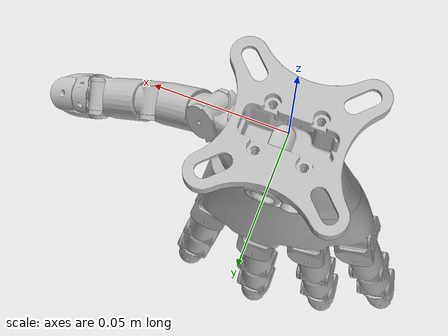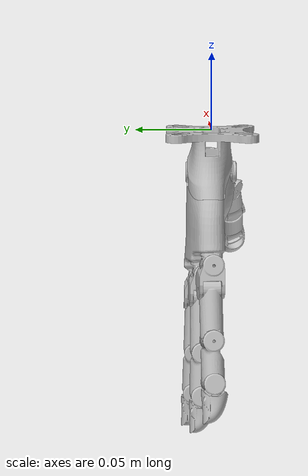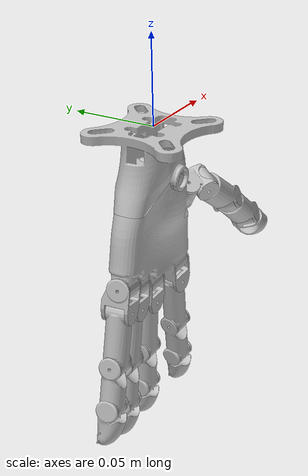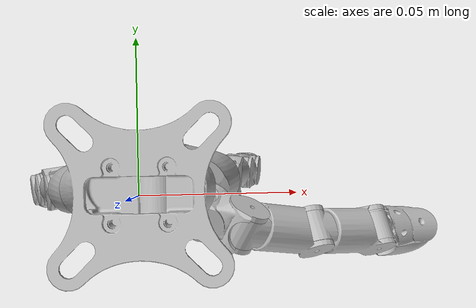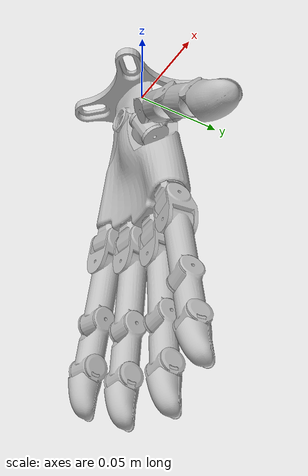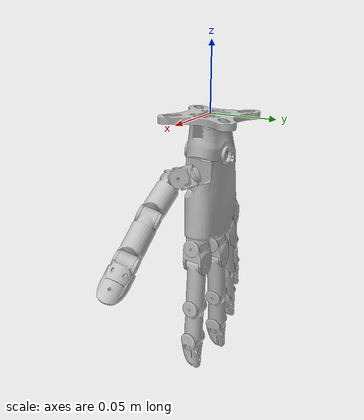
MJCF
<mujoco model="wujihand2-left">
  <compiler angle="radian" meshdir="../meshes/left/" />
  <option jacobian="sparse" integrator="RK4" timestep="0.002" solver="Newton" iterations="50" tolerance="1e-10" />
  <default>
    <joint armature="0.0002" damping="0.0" />
  </default>
  <asset>
    <mesh name="l_mount" content_type="model/stl" file="l_mount.STL" />
    <mesh name="l_wrist" content_type="model/stl" file="l_wrist.STL" />
    <mesh name="l_thumb_proximal" content_type="model/stl" file="l_thumb_proximal.STL" />
    <mesh name="l_thumb_proximal_abd" content_type="model/stl" file="l_thumb_proximal_abd.STL" />
    <mesh name="l_thumb_middle" content_type="model/stl" file="l_thumb_middle.STL" />
    <mesh name="l_thumb_distal" content_type="model/stl" file="l_thumb_distal.STL" />
    <mesh name="l_index_finger_proximal" content_type="model/stl" file="l_index_finger_proximal.STL" />
    <mesh name="l_index_finger_proximal_abd" content_type="model/stl" file="l_index_finger_proximal_abd.STL" />
    <mesh name="l_index_finger_middle" content_type="model/stl" file="l_index_finger_middle.STL" />
    <mesh name="l_index_finger_distal" content_type="model/stl" file="l_index_finger_distal.STL" />
    <mesh name="l_middle_finger_proximal" content_type="model/stl" file="l_middle_finger_proximal.STL" />
    <mesh name="l_middle_finger_proximal_abd" content_type="model/stl" file="l_middle_finger_proximal_abd.STL" />
    <mesh name="l_middle_finger_middle" content_type="model/stl" file="l_middle_finger_middle.STL" />
    <mesh name="l_middle_finger_distal" content_type="model/stl" file="l_middle_finger_distal.STL" />
    <mesh name="l_ring_finger_proximal" content_type="model/stl" file="l_ring_finger_proximal.STL" />
    <mesh name="l_ring_finger_proximal_abd" content_type="model/stl" file="l_ring_finger_proximal_abd.STL" />
    <mesh name="l_ring_finger_middle" content_type="model/stl" file="l_ring_finger_middle.STL" />
    <mesh name="l_ring_finger_distal" content_type="model/stl" file="l_ring_finger_distal.STL" />
    <mesh name="l_pinky_proximal" content_type="model/stl" file="l_pinky_proximal.STL" />
    <mesh name="l_pinky_proximal_abd" content_type="model/stl" file="l_pinky_proximal_abd.STL" />
    <mesh name="l_pinky_middle" content_type="model/stl" file="l_pinky_middle.STL" />
    <mesh name="l_pinky_distal" content_type="model/stl" file="l_pinky_distal.STL" />
  </asset>
  <worldbody>
    <body name="l_mount">
      <inertial pos="-0.00285741697915 0.00108288053432 -0.0169808713459" mass="0.069" quat="0.06126206 0.83362439 -0.18275230 -0.51760886" diaginertia="2.60390028e-05 2.50857182e-05 1.69216290e-05" />
      <geom type="mesh" contype="0" conaffinity="0" group="1" density="0" rgba="0.75 0.75 0.75 1" mesh="l_mount" />
      <geom type="mesh" rgba="0.8 0.6 1 0.3" mesh="l_mount" group="2" />
      <body name="l_wrist" pos="0.00300004769908 -0.00030010923368 -0.0284998261308">
        <inertial pos="-0.00354846481181 0.00346683963964 -0.0356860644391" mass="0.2323" quat="-0.69289634 -0.10762174 0.04153368 0.71174938" diaginertia="1.55584549e-04 9.95156428e-05 7.71172334e-05" />
        <geom type="mesh" contype="0" conaffinity="0" group="1" density="0" rgba="0.75 0.75 0.75 1" mesh="l_wrist" />
        <geom type="mesh" rgba="0.8 0.6 1 0.3" mesh="l_wrist" group="2" />
        <body name="l_thumb_proximal" pos="0.0172079523 -0.00813799077 -0.0164591739" quat="0.629481683 0.0606190694 -0.720070637 -0.285615856">
          <inertial pos="0.000791225 0.00178311 -0.00701986" quat="0.936928 0.0292296 -0.0818877 0.338536" mass="0.011" diaginertia="8.62864e-07 8.21693e-07 6.54356e-07" />
          <joint name="l_thumb_cmc_flex" pos="0 0 0" axis="-1 0 0" range="-1.187 1.291" actuatorfrcrange="-0.6 0.6" armature="0.0005" />
          <geom type="mesh" contype="0" conaffinity="0" group="1" density="0" rgba="0.75 0.75 0.75 1" mesh="l_thumb_proximal" />
          <geom type="mesh" rgba="0.8 0.6 1 0.3" mesh="l_thumb_proximal" group="2" />
          <body name="l_thumb_proximal_abd" pos="0.00025789 0.00063167 -0.014161" quat="0.934711 -0.0919289 0.342519 0.0233666">
            <inertial pos="1.22552e-05 -4.92145e-06 -0.0135605" quat="0.846494 -0.00222931 -0.00121984 0.532392" mass="0.0336" diaginertia="4.38854e-06 4.24746e-06 1.23727e-06" />
            <joint name="l_thumb_cmc_abd" pos="0 0 0" axis="0 1 0" range="-1.484 0.698" actuatorfrcrange="-0.6 0.6" armature="0.0005" />
            <geom type="mesh" contype="0" conaffinity="0" group="1" density="0" rgba="0.75 0.75 0.75 1" mesh="l_thumb_proximal_abd" />
            <geom type="mesh" rgba="0.8 0.6 1 0.3" mesh="l_thumb_proximal_abd" group="2" />
            <body name="l_thumb_middle" pos="-4.3136e-05 2.4905e-05 -0.033496" quat="0.965006 0.0112895 0.0421329 -0.258573">
              <inertial pos="7.07487e-07 4.31165e-08 -0.0143056" quat="0.70627 -3.2641e-05 -3.35882e-05 0.707942" mass="0.0358" diaginertia="4.92859e-06 4.8196e-06 1.32688e-06" />
              <joint name="l_thumb_mcp" pos="0 0 0" axis="-1 0 0" range="-1.047 1.57" actuatorfrcrange="-0.3 0.3" />
              <geom type="mesh" contype="0" conaffinity="0" group="1" density="0" rgba="0.75 0.75 0.75 1" mesh="l_thumb_middle" />
              <geom type="mesh" rgba="0.8 0.6 1 0.3" mesh="l_thumb_middle" group="2" />
              <body name="l_thumb_distal" pos="0 0 -0.035">
                <inertial pos="1.969e-05 -0.000512401 -0.0149323" quat="0.686307 0.0431774 -0.0347446 0.725198" mass="0.0159" diaginertia="1.38099e-06 1.3339e-06 6.79986e-07" />
                <joint name="l_thumb_ip" pos="0 0 0" axis="-1 0 0" range="-1.047 1.57" actuatorfrcrange="-0.3 0.3" />
                <geom type="mesh" contype="0" conaffinity="0" group="1" density="0" rgba="0.75 0.75 0.75 1" mesh="l_thumb_distal" />
                <geom type="mesh" rgba="0.8 0.6 1 0.3" mesh="l_thumb_distal" group="2" />
                <site name="l_thumb_tip" pos="0 0 -0.029787" group="3" size="0.002" rgba="1 0 0 1" />
              </body>
            </body>
          </body>
        </body>
        <body name="l_index_finger_proximal" pos="0.0226519523 0.00332510923 -0.0699781739" quat="0.996271569 0.0163849929 -0.06930747 -0.0486925789">
          <inertial pos="-1.83184e-09 0.00178137 -0.00760139" quat="0.999275 0.0380628 0 0" mass="0.0116" diaginertia="9.19684e-07 9.08608e-07 7.88412e-07" />
          <joint name="l_index_finger_mcp_flex" pos="0 0 0" axis="-1 0 0" range="-1.047 1.57" actuatorfrcrange="-2 2" armature="0.0005" />
          <geom type="mesh" contype="0" conaffinity="0" group="1" density="0" rgba="0.75 0.75 0.75 1" mesh="l_index_finger_proximal" />
          <geom type="mesh" rgba="0.8 0.6 1 0.3" mesh="l_index_finger_proximal" group="2" />
          <body name="l_index_finger_proximal_abd" pos="0 0.00120098 -0.0145">
            <inertial pos="-8.04677e-08 -7.30404e-07 -0.0187994" quat="0.983237 1.60588e-05 -3.84243e-06 0.18233" mass="0.0339" diaginertia="7.01589e-06 7.01555e-06 9.1448e-07" />
            <joint name="l_index_finger_mcp_abd" pos="0 0 0" axis="0 1 0" range="-0.698 0.698" actuatorfrcrange="-0.2 0.2" />
            <geom type="mesh" contype="0" conaffinity="0" group="1" density="0" rgba="0.75 0.75 0.75 1" mesh="l_index_finger_proximal_abd" />
            <geom type="mesh" rgba="0.8 0.6 1 0.3" mesh="l_index_finger_proximal_abd" group="2" />
            <body name="l_index_finger_middle" pos="0 0 -0.0376">
              <inertial pos="5.07335e-08 0.000247887 -0.0190348" quat="0.707235 -0.0108069 0.0107958 0.706814" mass="0.0212" diaginertia="2.47797e-06 2.40525e-06 6.52478e-07" />
              <joint name="l_index_finger_pip" pos="0 0 0" axis="-1 0 0" range="-1.047 2.094" actuatorfrcrange="-0.3 0.3" />
              <geom type="mesh" contype="0" conaffinity="0" group="1" density="0" rgba="0.75 0.75 0.75 1" mesh="l_index_finger_middle" />
              <geom type="mesh" rgba="0.8 0.6 1 0.3" mesh="l_index_finger_middle" group="2" />
              <body name="l_index_finger_distal" pos="0 0 -0.0295">
                <inertial pos="-0.000273616 3.02075e-05 -0.0121849" quat="0.729924 0.00300152 -0.0683924 0.680091" mass="0.0078" diaginertia="5.74442e-07 5.40524e-07 2.7383e-07" />
                <joint name="l_index_finger_dip" pos="0 0 0" axis="-1 0 0" range="-1.047 1.57" actuatorfrcrange="-0.3 0.3" />
                <geom type="mesh" contype="0" conaffinity="0" group="1" density="0" rgba="0.75 0.75 0.75 1" mesh="l_index_finger_distal" />
                <geom type="mesh" rgba="0.8 0.6 1 0.3" mesh="l_index_finger_distal" group="2" />
                <site name="l_index_finger_tip" pos="0 0 -0.02475" group="3" size="0.002" rgba="1 0 0 1" />
              </body>
            </body>
          </body>
        </body>
        <body name="l_middle_finger_proximal" pos="0.000943052301 0.00830300923 -0.0739201739" quat="0.999840644 0.016953894 0.00558422801 0.000262984906">
          <inertial pos="-1.83184e-09 0.00178137 -0.00760139" quat="0.999275 0.0380628 0 0" mass="0.0116" diaginertia="9.19684e-07 9.08608e-07 7.88412e-07" />
          <joint name="l_middle_finger_mcp_flex" pos="0 0 0" axis="-1 0 0" range="-1.047 1.57" actuatorfrcrange="-2 2" armature="0.0005" />
          <geom type="mesh" contype="0" conaffinity="0" group="1" density="0" rgba="0.75 0.75 0.75 1" mesh="l_middle_finger_proximal" />
          <geom type="mesh" rgba="0.8 0.6 1 0.3" mesh="l_middle_finger_proximal" group="2" />
          <body name="l_middle_finger_proximal_abd" pos="0 0.00120098 -0.0145">
            <inertial pos="-8.04677e-08 -7.30404e-07 -0.0187994" quat="0.983237 1.60588e-05 -3.84243e-06 0.18233" mass="0.0339" diaginertia="7.01589e-06 7.01555e-06 9.1448e-07" />
            <joint name="l_middle_finger_mcp_abd" pos="0 0 0" axis="0 1 0" range="-0.698 0.698" actuatorfrcrange="-0.2 0.2" />
            <geom type="mesh" contype="0" conaffinity="0" group="1" density="0" rgba="0.75 0.75 0.75 1" mesh="l_middle_finger_proximal_abd" />
            <geom type="mesh" rgba="0.8 0.6 1 0.3" mesh="l_middle_finger_proximal_abd" group="2" />
            <body name="l_middle_finger_middle" pos="0 0 -0.0376">
              <inertial pos="5.07335e-08 0.000247887 -0.0190348" quat="0.707235 -0.0108069 0.0107958 0.706814" mass="0.0212" diaginertia="2.47797e-06 2.40525e-06 6.52478e-07" />
              <joint name="l_middle_finger_pip" pos="0 0 0" axis="-1 0 0" range="-1.047 2.094" actuatorfrcrange="-0.3 0.3" />
              <geom type="mesh" contype="0" conaffinity="0" group="1" density="0" rgba="0.75 0.75 0.75 1" mesh="l_middle_finger_middle" />
              <geom type="mesh" rgba="0.8 0.6 1 0.3" mesh="l_middle_finger_middle" group="2" />
              <body name="l_middle_finger_distal" pos="0 0 -0.0295">
                <inertial pos="-0.000273616 3.02075e-05 -0.0121849" quat="0.729924 0.00300152 -0.0683924 0.680091" mass="0.0078" diaginertia="5.74442e-07 5.40524e-07 2.7383e-07" />
                <joint name="l_middle_finger_dip" pos="0 0 0" axis="-1 0 0" range="-1.047 1.57" actuatorfrcrange="-0.3 0.3" />
                <geom type="mesh" contype="0" conaffinity="0" group="1" density="0" rgba="0.75 0.75 0.75 1" mesh="l_middle_finger_distal" />
                <geom type="mesh" rgba="0.8 0.6 1 0.3" mesh="l_middle_finger_distal" group="2" />
                <site name="l_middle_finger_tip" pos="0 0 -0.02475" group="3" size="0.002" rgba="1 0 0 1" />
              </body>
            </body>
          </body>
        </body>
        <body name="l_ring_finger_proximal" pos="-0.0197520477 0.00559290923 -0.0653971739" quat="0.996893023 0.00588709014 0.0710557017 0.0334773008">
          <inertial pos="-1.83184e-09 0.00178137 -0.00760139" quat="0.999275 0.0380628 0 0" mass="0.0116" diaginertia="9.19684e-07 9.08608e-07 7.88412e-07" />
          <joint name="l_ring_finger_mcp_flex" pos="0 0 0" axis="-1 0 0" range="-1.047 1.57" actuatorfrcrange="-2 2" armature="0.0005" />
          <geom type="mesh" contype="0" conaffinity="0" group="1" density="0" rgba="0.75 0.75 0.75 1" mesh="l_ring_finger_proximal" />
          <geom type="mesh" rgba="0.8 0.6 1 0.3" mesh="l_ring_finger_proximal" group="2" />
          <body name="l_ring_finger_proximal_abd" pos="0 0.00120098 -0.0145">
            <inertial pos="-8.04677e-08 -7.30404e-07 -0.0187994" quat="0.983237 1.60588e-05 -3.84243e-06 0.18233" mass="0.0339" diaginertia="7.01589e-06 7.01555e-06 9.1448e-07" />
            <joint name="l_ring_finger_mcp_abd" pos="0 0 0" axis="0 1 0" range="-0.698 0.698" actuatorfrcrange="-0.2 0.2" />
            <geom type="mesh" contype="0" conaffinity="0" group="1" density="0" rgba="0.75 0.75 0.75 1" mesh="l_ring_finger_proximal_abd" />
            <geom type="mesh" rgba="0.8 0.6 1 0.3" mesh="l_ring_finger_proximal_abd" group="2" />
            <body name="l_ring_finger_middle" pos="0 0 -0.0376">
              <inertial pos="5.07335e-08 0.000247887 -0.0190348" quat="0.707235 -0.0108069 0.0107958 0.706814" mass="0.0212" diaginertia="2.47797e-06 2.40525e-06 6.52478e-07" />
              <joint name="l_ring_finger_pip" pos="0 0 0" axis="-1 0 0" range="-1.047 2.094" actuatorfrcrange="-0.3 0.3" />
              <geom type="mesh" contype="0" conaffinity="0" group="1" density="0" rgba="0.75 0.75 0.75 1" mesh="l_ring_finger_middle" />
              <geom type="mesh" rgba="0.8 0.6 1 0.3" mesh="l_ring_finger_middle" group="2" />
              <body name="l_ring_finger_distal" pos="0 0 -0.0295">
                <inertial pos="-0.000273616 3.02075e-05 -0.0121849" quat="0.729924 0.00300152 -0.0683924 0.680091" mass="0.0078" diaginertia="5.74442e-07 5.40524e-07 2.7383e-07" />
                <joint name="l_ring_finger_dip" pos="0 0 0" axis="-1 0 0" range="-1.047 1.57" actuatorfrcrange="-0.3 0.3" />
                <geom type="mesh" contype="0" conaffinity="0" group="1" density="0" rgba="0.75 0.75 0.75 1" mesh="l_ring_finger_distal" />
                <geom type="mesh" rgba="0.8 0.6 1 0.3" mesh="l_ring_finger_distal" group="2" />
                <site name="l_ring_finger_tip" pos="0 0 -0.02475" group="3" size="0.002" rgba="1 0 0 1" />
              </body>
            </body>
          </body>
        </body>
        <body name="l_pinky_proximal" pos="-0.0373570477 0.000733759234 -0.0552921739" quat="0.989996393 -0.00357949142 0.124211049 0.0668277265">
          <inertial pos="2.12813e-07 0.00178136 -0.00760145" quat="0.999275 0.0380616 -2.43111e-05 0.000106336" mass="0.0116" diaginertia="9.19664e-07 9.08603e-07 7.88413e-07" />
          <joint name="l_pinky_mcp_flex" pos="0 0 0" axis="-1 0 0" range="-1.047 1.57" actuatorfrcrange="-2 2" armature="0.0005" />
          <geom type="mesh" contype="0" conaffinity="0" group="1" density="0" rgba="0.75 0.75 0.75 1" mesh="l_pinky_proximal" />
          <geom type="mesh" rgba="0.8 0.6 1 0.3" mesh="l_pinky_proximal" group="2" />
          <body name="l_pinky_proximal_abd" pos="0 0.00120098 -0.0145">
            <inertial pos="-1.55649e-06 -5.45404e-07 -0.016785" quat="0.762165 7.77169e-06 -3.02083e-05 0.647382" mass="0.0304" diaginertia="5.38014e-06 5.37944e-06 8.1771e-07" />
            <joint name="l_pinky_mcp_abd" pos="0 0 0" axis="0 1 0" range="-0.698 0.698" actuatorfrcrange="-0.2 0.2" />
            <geom type="mesh" contype="0" conaffinity="0" group="1" density="0" rgba="0.75 0.75 0.75 1" mesh="l_pinky_proximal_abd" />
            <geom type="mesh" rgba="0.8 0.6 1 0.3" mesh="l_pinky_proximal_abd" group="2" />
            <body name="l_pinky_middle" pos="-0.0001 0 -0.0336">
              <inertial pos="3.23236e-07 0.000264491 -0.0178807" quat="0.707241 -0.0112918 0.0112863 0.706792" mass="0.0188" diaginertia="2.05957e-06 1.98647e-06 5.84911e-07" />
              <joint name="l_pinky_pip" pos="0 0 0" axis="-1 0 0" range="-1.047 2.094" actuatorfrcrange="-0.3 0.3" />
              <geom type="mesh" contype="0" conaffinity="0" group="1" density="0" rgba="0.75 0.75 0.75 1" mesh="l_pinky_middle" />
              <geom type="mesh" rgba="0.8 0.6 1 0.3" mesh="l_pinky_middle" group="2" />
              <body name="l_pinky_distal" pos="0 0 -0.0275">
                <inertial pos="-0.000273616 3.02075e-05 -0.0121849" quat="0.729924 0.00300152 -0.0683924 0.680091" mass="0.0078" diaginertia="5.74442e-07 5.40524e-07 2.7383e-07" />
                <joint name="l_pinky_dip" pos="0 0 0" axis="-1 0 0" range="-1.047 1.57" actuatorfrcrange="-0.3 0.3" />
                <geom type="mesh" contype="0" conaffinity="0" group="1" density="0" rgba="0.75 0.75 0.75 1" mesh="l_pinky_distal" />
                <geom type="mesh" rgba="0.8 0.6 1 0.3" mesh="l_pinky_distal" group="2" />
                <site name="l_pinky_tip" pos="0 0 -0.02475" group="3" size="0.002" rgba="1 0 0 1" />
              </body>
            </body>
          </body>
        </body>
      </body>
    </body>
  </worldbody>
  <actuator>
    <position name="l_THJ0" joint="l_thumb_cmc_flex" kp="0.40844710645048043" kv="0.020882010257063675" ctrlrange="-1.187 1.291" forcerange="-0.6 0.6" />
    <position name="l_THJ1" joint="l_thumb_cmc_abd" kp="0.6858601063643346" kv="0.030610939996373314" ctrlrange="-1.484 0.698" forcerange="-0.6 0.6" />
    <position name="l_THJ2" joint="l_thumb_mcp" kp="0.2391112196099482" kv="0.010181475050560962" ctrlrange="-1.047 1.57" forcerange="-0.3 0.3" />
    <position name="l_THJ3" joint="l_thumb_ip" kp="0.20736128319711747" kv="0.00909698844675045" ctrlrange="-1.047 1.57" forcerange="-0.3 0.3" />
    <position name="l_FFJ0" joint="l_index_finger_mcp_flex" kp="0.37352218155860073" kv="0.01882274330029718" ctrlrange="-1.047 1.57" forcerange="-2 2" />
    <position name="l_FFJ1" joint="l_index_finger_mcp_abd" kp="0.45592448909027794" kv="0.019798167597016643" ctrlrange="-0.698 0.698" forcerange="-0.2 0.2" />
    <position name="l_FFJ2" joint="l_index_finger_pip" kp="0.24368366649522863" kv="0.010477031953162727" ctrlrange="-1.047 2.094" forcerange="-0.3 0.3" />
    <position name="l_FFJ3" joint="l_index_finger_dip" kp="0.18026971340925335" kv="0.008240212147903584" ctrlrange="-1.047 1.57" forcerange="-0.3 0.3" />
    <position name="l_MFJ0" joint="l_middle_finger_mcp_flex" kp="0.3687093483646485" kv="0.01848622487024593" ctrlrange="-1.047 1.57" forcerange="-2 2" />
    <position name="l_MFJ1" joint="l_middle_finger_mcp_abd" kp="0.4164253443634641" kv="0.018032947229953678" ctrlrange="-0.698 0.698" forcerange="-0.2 0.2" />
    <position name="l_MFJ2" joint="l_middle_finger_pip" kp="0.22218607502059182" kv="0.009592200014076666" ctrlrange="-1.047 2.094" forcerange="-0.3 0.3" />
    <position name="l_MFJ3" joint="l_middle_finger_dip" kp="0.19427606072023446" kv="0.009152994605972402" ctrlrange="-1.047 1.57" forcerange="-0.3 0.3" />
    <position name="l_RFJ0" joint="l_ring_finger_mcp_flex" kp="0.35718151495111794" kv="0.018376606800780005" ctrlrange="-1.047 1.57" forcerange="-2 2" />
    <position name="l_RFJ1" joint="l_ring_finger_mcp_abd" kp="0.42977315313086895" kv="0.01867700966212433" ctrlrange="-0.698 0.698" forcerange="-0.2 0.2" />
    <position name="l_RFJ2" joint="l_ring_finger_pip" kp="0.24930151196247122" kv="0.01059512121009555" ctrlrange="-1.047 2.094" forcerange="-0.3 0.3" />
    <position name="l_RFJ3" joint="l_ring_finger_dip" kp="0.2285032688178066" kv="0.009917602877441107" ctrlrange="-1.047 1.57" forcerange="-0.3 0.3" />
    <position name="l_LFJ0" joint="l_pinky_mcp_flex" kp="0.3655325975433942" kv="0.018616960278988272" ctrlrange="-1.047 1.57" forcerange="-2 2" />
    <position name="l_LFJ1" joint="l_pinky_mcp_abd" kp="0.41393113081120425" kv="0.018732177029667153" ctrlrange="-0.698 0.698" forcerange="-0.2 0.2" />
    <position name="l_LFJ2" joint="l_pinky_pip" kp="0.22729367621965954" kv="0.00951005441616486" ctrlrange="-1.047 2.094" forcerange="-0.3 0.3" />
    <position name="l_LFJ3" joint="l_pinky_dip" kp="0.1964723550341816" kv="0.009017295241756363" ctrlrange="-1.047 1.57" forcerange="-0.3 0.3" />
  </actuator>
  <contact>
    <exclude body1="l_thumb_proximal" body2="l_wrist" />
    <exclude body1="l_thumb_proximal_abd" body2="l_wrist" />
    <exclude body1="l_index_finger_proximal" body2="l_wrist" />
    <exclude body1="l_index_finger_proximal_abd" body2="l_wrist" />
    <exclude body1="l_middle_finger_proximal" body2="l_wrist" />
    <exclude body1="l_middle_finger_proximal_abd" body2="l_wrist" />
    <exclude body1="l_ring_finger_proximal" body2="l_wrist" />
    <exclude body1="l_ring_finger_proximal_abd" body2="l_wrist" />
    <exclude body1="l_pinky_proximal" body2="l_wrist" />
    <exclude body1="l_pinky_proximal_abd" body2="l_wrist" />
  </contact>
</mujoco>
